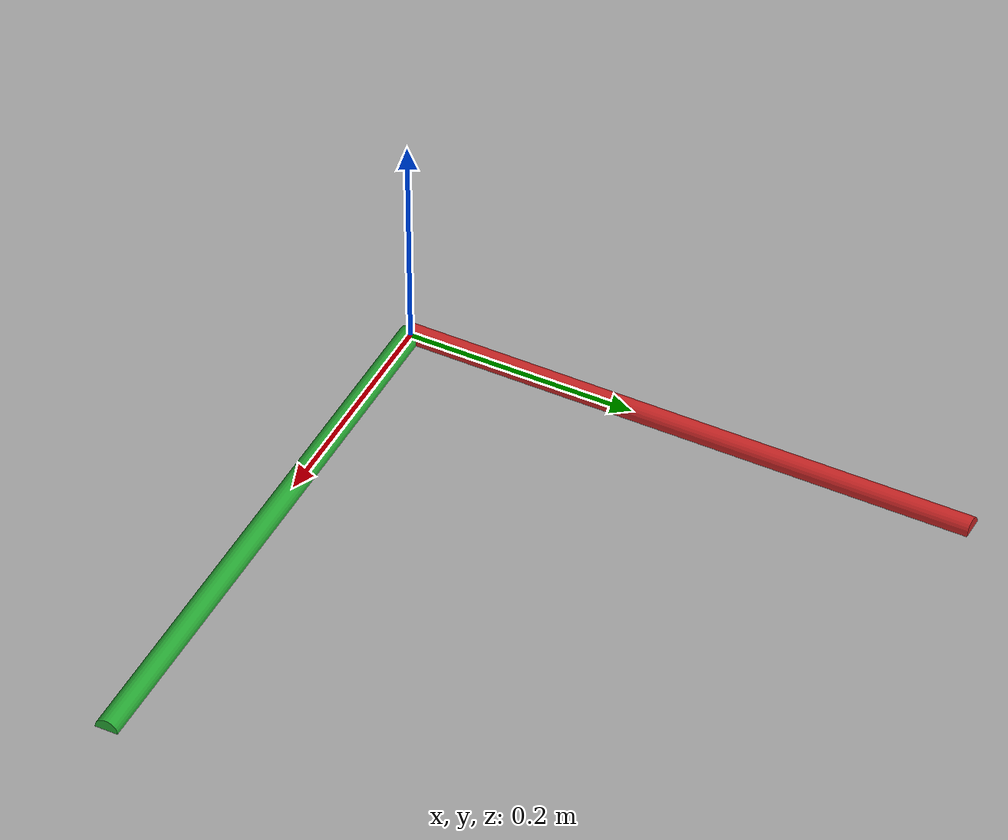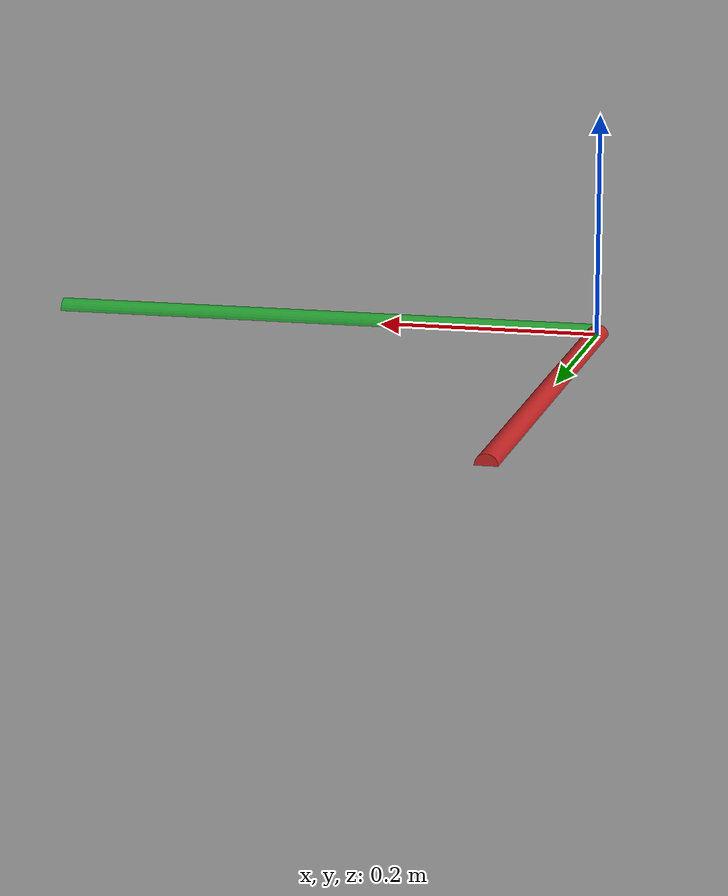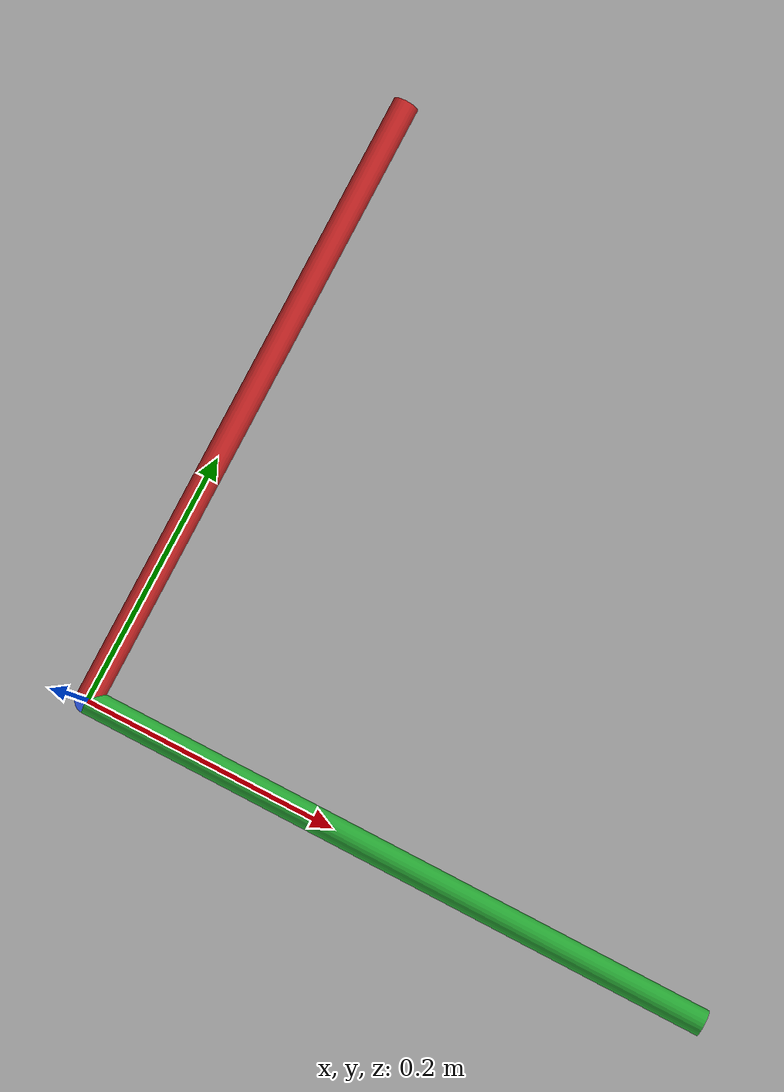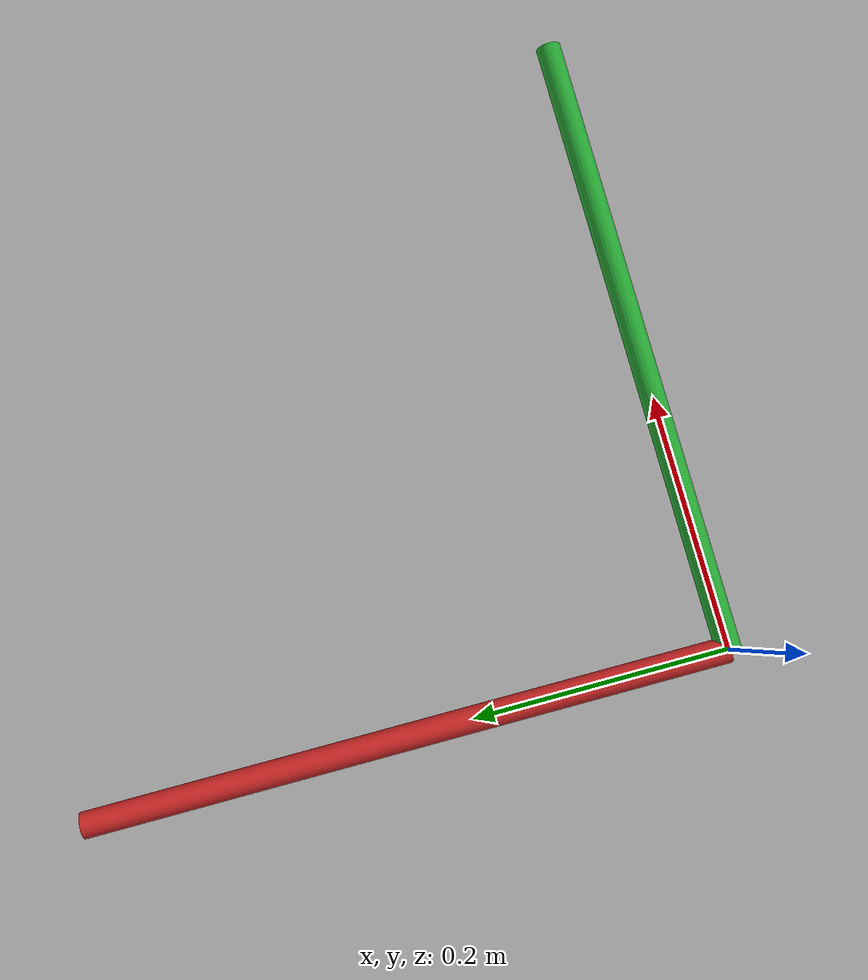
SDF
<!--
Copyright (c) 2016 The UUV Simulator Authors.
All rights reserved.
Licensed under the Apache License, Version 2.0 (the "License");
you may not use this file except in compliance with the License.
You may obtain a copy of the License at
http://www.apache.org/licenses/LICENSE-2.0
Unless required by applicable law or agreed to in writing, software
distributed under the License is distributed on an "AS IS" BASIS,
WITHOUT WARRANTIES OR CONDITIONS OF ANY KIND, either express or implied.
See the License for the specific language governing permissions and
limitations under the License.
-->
<?xml version="1.0" ?>
<sdf version="1.5">
  <world name="default">
    <physics name="default_physics" default="true" type="ode">
      <max_step_size>0.002</max_step_size>
      <real_time_factor>1</real_time_factor>
      <real_time_update_rate>500</real_time_update_rate>
      <ode>
        <solver>
          <type>quick</type>
          <iters>50</iters>
          <sor>0.5</sor>
        </solver>
      </ode>
    </physics>
    <scene>
      <ambient>0.01 0.01 0.01 1.0</ambient>
      <sky>
        <clouds>
          <speed>12</speed>
        </clouds>
      </sky>
      <shadows>1</shadows>
    </scene>

    <!-- Origin placed somewhere in the middle of the Bodensee (Germany)  -->
    <spherical_coordinates>
      <latitude_deg>47.6278771</latitude_deg>
      <longitude_deg>9.334553</longitude_deg>
    </spherical_coordinates>

      <!-- Global light source -->
    <light type="directional" name="sun1">
      <pose>50 0 150 0 0 0</pose>
      <diffuse>1 1 1 1</diffuse>
      <specular>.1 .1 .1 1</specular>
      <direction>0.3 0.3 -1</direction>
      <cast_shadows>true</cast_shadows>
    </light>

    <!-- Global light source -->
    <include>
      <uri>model://sun</uri>
    </include>

    <!-- Virtual NED frame -->
    <include>
      <uri>model://ned_frame</uri>
      <pose>0 0 0 0 0 0</pose>
    </include>
    <model name="seabed">
      <pose>0 0 0  0 0 0</pose>
      <static>true</static>
      <link name="tank">
        <collision name="bottom">
          <geometry>
            <mesh><uri>model://models/lake/meshes/LakeBottom.dae</uri></mesh>
          </geometry>
        </collision>
        <visual name="surface">
          <geometry>
            <mesh><uri>model://models/lake/meshes/WaterSurface.dae</uri></mesh>
          </geometry>
        </visual>
      </link>
    </model>

    <plugin name="underwater_current_plugin" filename="libuuv_underwater_current_ros_plugin.so">
      <namespace>hydrodynamics</namespace>
      <constant_current>
        <topic>current_velocity</topic>
        <velocity>
          <mean>0</mean>
          <min>0</min>
          <max>5</max>
          <mu>0.0</mu>
          <noiseAmp>0.0</noiseAmp>
        </velocity>

        <horizontal_angle>
          <mean>0</mean>
          <min>-3.141592653589793238</min>
          <max>3.141592653589793238</max>
          <mu>0.0</mu>
          <noiseAmp>0.0</noiseAmp>
        </horizontal_angle>

        <vertical_angle>
          <mean>0</mean>
          <min>-3.141592653589793238</min>
          <max>3.141592653589793238</max>
          <mu>0.0</mu>
          <noiseAmp>0.0</noiseAmp>
        </vertical_angle>
      </constant_current>
    </plugin>

    <plugin name="sc_interface" filename="libuuv_sc_ros_interface_plugin.so"/>

  </world>
</sdf>

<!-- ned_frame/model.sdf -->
<sdf version='1.5'>
    <model name="world_ned">

      <pose>0 0 0 0 0 0</pose>
      <static>true</static>

      <link name="world_ned">
        <gravity>0</gravity>
        <pose>0 0 0 3.14159265359 0 1.5707963267948966</pose>

        <visual name="N_visual">
          <pose>0.25 0 0 1.5707963267948966 0 1.5707963267948966</pose>
          <geometry>
            <cylinder>
              <radius>0.01</radius>
              <length>0.5</length>
            </cylinder>
          </geometry>
          <material>
            <script>
              <uri>file://media/materials/scripts/gazebo.material</uri>
              <name>Gazebo/Red</name>
            </script>
          </material>
        </visual>

        <visual name="E_visual">
          <pose>0 0.25 0 1.5707963267948966 0 0</pose>
          <geometry>
            <cylinder>
              <radius>0.01</radius>
              <length>0.5</length>
            </cylinder>
          </geometry>
          <material>
            <script>
              <uri>file://media/materials/scripts/gazebo.material</uri>
              <name>Gazebo/Green</name>
            </script>
          </material>
        </visual>

        <visual name="D_visual">
          <pose>0 0 0.25 0 0 0</pose>
          <geometry>
            <cylinder>
              <radius>0.01</radius>
              <length>0.5</length>
            </cylinder>
          </geometry>
          <material>
            <script>
              <uri>file://media/materials/scripts/gazebo.material</uri>
              <name>Gazebo/Blue</name>
            </script>
          </material>
        </visual>
      </link>
    </model>
</sdf>
